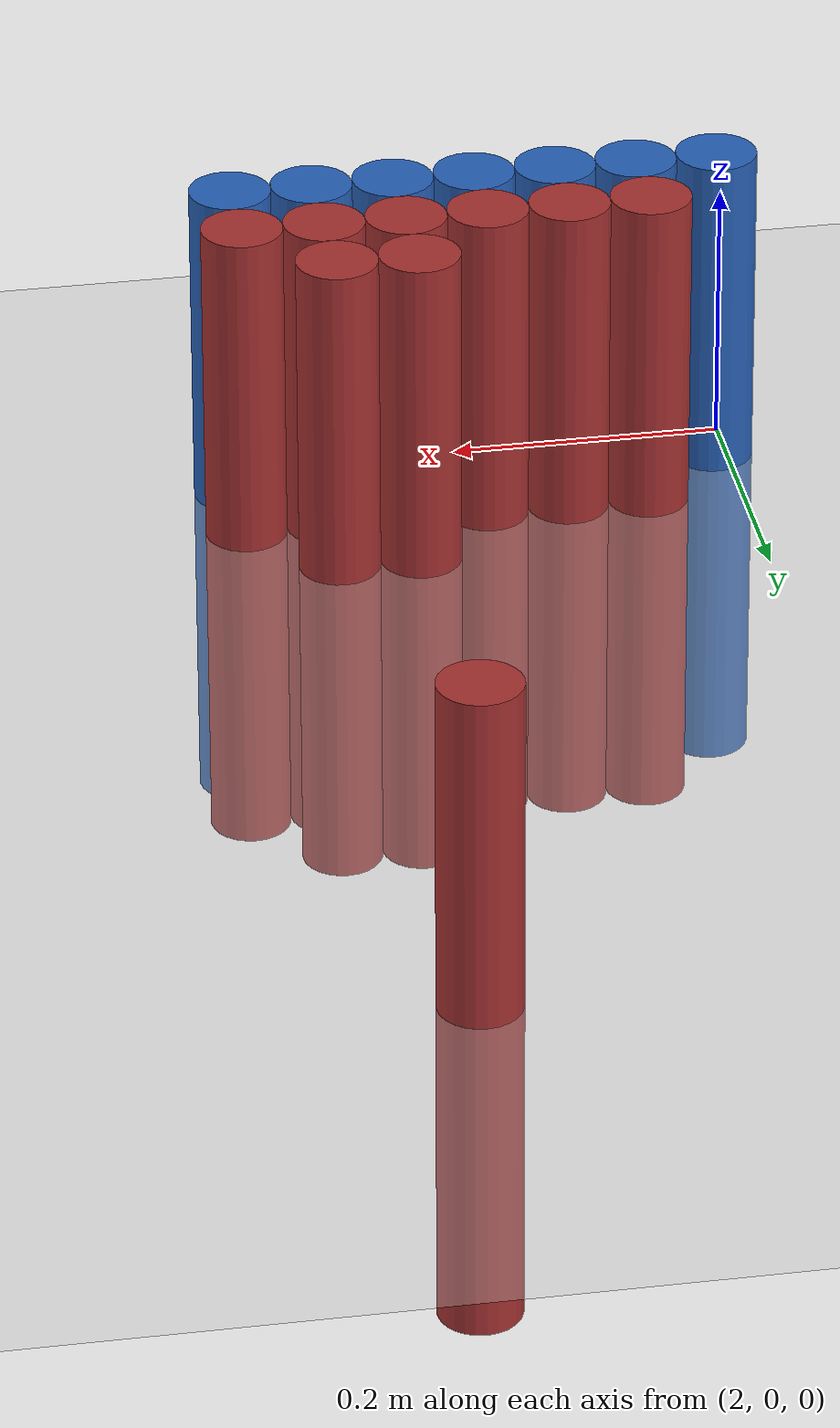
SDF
<sdf version="1.6">
 <world name="default">
  <model name="ground_plane">
   <static>1</static>
   <link name="link">
    <collision name="collision">
     <geometry><plane><normal>0 0 1</normal><size>100 100</size></plane></geometry>
     <surface><friction><ode><mu>100</mu><mu2>50</mu2></ode></friction></surface>
    </collision>
    <visual name="visual">
     <cast_shadows>0</cast_shadows>
     <geometry><plane><normal>0 0 1</normal><size>100 100</size></plane></geometry>
     <material>
      <script><uri>file://media/materials/scripts/gazebo.material</uri><name>Gazebo/Grey</name></script>
     </material>
    </visual>
   </link>
  </model>
  <model name="unit_cylinder_93">
   <static>1</static>
   <pose>2.010000 0.030000 0.000000 0.000000 0.000000 0.000000</pose>
   <link name="link">
    <inertial>
     <mass>1</mass>
     <inertia><ixx>0.145833</ixx><ixy>0</ixy><ixz>0</ixz><iyy>0.145833</iyy><iyz>0</iyz><izz>0.125</izz></inertia>
    </inertial>
    <collision name="collision">
     <geometry><cylinder><radius>0.030000</radius><length>0.5</length></cylinder></geometry>
    </collision>
    <visual name="visual">
     <geometry><cylinder><radius>0.030000</radius><length>0.5</length></cylinder></geometry>
     <material>
      <ambient>0.152000 0.379000 0.720000 1</ambient>
      <diffuse>0.152000 0.379000 0.720000 1</diffuse>
     </material>
     <material>
      <script><name>Gazebo/Grey</name><uri>file://media/materials/scripts/gazebo.material</uri></script>
     </material>
    </visual>
   </link>
  </model>
  <model name="unit_cylinder_184">
   <static>1</static>
   <pose>2.310000 0.750000 0.000000 0.000000 0.000000 0.000000</pose>
   <link name="link">
    <inertial>
     <mass>1</mass>
     <inertia><ixx>0.145833</ixx><ixy>0</ixy><ixz>0</ixz><iyy>0.145833</iyy><iyz>0</iyz><izz>0.125</izz></inertia>
    </inertial>
    <collision name="collision">
     <geometry><cylinder><radius>0.030000</radius><length>0.5</length></cylinder></geometry>
    </collision>
    <visual name="visual">
     <geometry><cylinder><radius>0.030000</radius><length>0.5</length></cylinder></geometry>
     <material>
      <ambient>0.648000 0.192000 0.192000 1</ambient>
      <diffuse>0.648000 0.192000 0.192000 1</diffuse>
     </material>
     <material>
      <script><name>Gazebo/Grey</name><uri>file://media/materials/scripts/gazebo.material</uri></script>
     </material>
    </visual>
   </link>
  </model>
  <model name="unit_cylinder_199">
   <static>1</static>
   <pose>2.250000 0.150000 0.000000 0.000000 0.000000 0.000000</pose>
   <link name="link">
    <inertial>
     <mass>1</mass>
     <inertia><ixx>0.145833</ixx><ixy>0</ixy><ixz>0</ixz><iyy>0.145833</iyy><iyz>0</iyz><izz>0.125</izz></inertia>
    </inertial>
    <collision name="collision">
     <geometry><cylinder><radius>0.030000</radius><length>0.5</length></cylinder></geometry>
    </collision>
    <visual name="visual">
     <geometry><cylinder><radius>0.030000</radius><length>0.5</length></cylinder></geometry>
     <material>
      <ambient>0.648000 0.192000 0.192000 1</ambient>
      <diffuse>0.648000 0.192000 0.192000 1</diffuse>
     </material>
     <material>
      <script><name>Gazebo/Grey</name><uri>file://media/materials/scripts/gazebo.material</uri></script>
     </material>
    </visual>
   </link>
  </model>
  <model name="unit_cylinder_200">
   <static>1</static>
   <pose>2.310000 0.150000 0.000000 0.000000 0.000000 0.000000</pose>
   <link name="link">
    <inertial>
     <mass>1</mass>
     <inertia><ixx>0.145833</ixx><ixy>0</ixy><ixz>0</ixz><iyy>0.145833</iyy><iyz>0</iyz><izz>0.125</izz></inertia>
    </inertial>
    <collision name="collision">
     <geometry><cylinder><radius>0.030000</radius><length>0.5</length></cylinder></geometry>
    </collision>
    <visual name="visual">
     <geometry><cylinder><radius>0.030000</radius><length>0.5</length></cylinder></geometry>
     <material>
      <ambient>0.648000 0.192000 0.192000 1</ambient>
      <diffuse>0.648000 0.192000 0.192000 1</diffuse>
     </material>
     <material>
      <script><name>Gazebo/Grey</name><uri>file://media/materials/scripts/gazebo.material</uri></script>
     </material>
    </visual>
   </link>
  </model>
  <model name="unit_cylinder_205">
   <static>1</static>
   <pose>2.070000 0.090000 0.000000 0.000000 0.000000 0.000000</pose>
   <link name="link">
    <inertial>
     <mass>1</mass>
     <inertia><ixx>0.145833</ixx><ixy>0</ixy><ixz>0</ixz><iyy>0.145833</iyy><iyz>0</iyz><izz>0.125</izz></inertia>
    </inertial>
    <collision name="collision">
     <geometry><cylinder><radius>0.030000</radius><length>0.5</length></cylinder></geometry>
    </collision>
    <visual name="visual">
     <geometry><cylinder><radius>0.030000</radius><length>0.5</length></cylinder></geometry>
     <material>
      <ambient>0.648000 0.192000 0.192000 1</ambient>
      <diffuse>0.648000 0.192000 0.192000 1</diffuse>
     </material>
     <material>
      <script><name>Gazebo/Grey</name><uri>file://media/materials/scripts/gazebo.material</uri></script>
     </material>
    </visual>
   </link>
  </model>
  <model name="unit_cylinder_206">
   <static>1</static>
   <pose>2.130000 0.090000 0.000000 0.000000 0.000000 0.000000</pose>
   <link name="link">
    <inertial>
     <mass>1</mass>
     <inertia><ixx>0.145833</ixx><ixy>0</ixy><ixz>0</ixz><iyy>0.145833</iyy><iyz>0</iyz><izz>0.125</izz></inertia>
    </inertial>
    <collision name="collision">
     <geometry><cylinder><radius>0.030000</radius><length>0.5</length></cylinder></geometry>
    </collision>
    <visual name="visual">
     <geometry><cylinder><radius>0.030000</radius><length>0.5</length></cylinder></geometry>
     <material>
      <ambient>0.648000 0.192000 0.192000 1</ambient>
      <diffuse>0.648000 0.192000 0.192000 1</diffuse>
     </material>
     <material>
      <script><name>Gazebo/Grey</name><uri>file://media/materials/scripts/gazebo.material</uri></script>
     </material>
    </visual>
   </link>
  </model>
  <model name="unit_cylinder_207">
   <static>1</static>
   <pose>2.190000 0.090000 0.000000 0.000000 0.000000 0.000000</pose>
   <link name="link">
    <inertial>
     <mass>1</mass>
     <inertia><ixx>0.145833</ixx><ixy>0</ixy><ixz>0</ixz><iyy>0.145833</iyy><iyz>0</iyz><izz>0.125</izz></inertia>
    </inertial>
    <collision name="collision">
     <geometry><cylinder><radius>0.030000</radius><length>0.5</length></cylinder></geometry>
    </collision>
    <visual name="visual">
     <geometry><cylinder><radius>0.030000</radius><length>0.5</length></cylinder></geometry>
     <material>
      <ambient>0.648000 0.192000 0.192000 1</ambient>
      <diffuse>0.648000 0.192000 0.192000 1</diffuse>
     </material>
     <material>
      <script><name>Gazebo/Grey</name><uri>file://media/materials/scripts/gazebo.material</uri></script>
     </material>
    </visual>
   </link>
  </model>
  <model name="unit_cylinder_208">
   <static>1</static>
   <pose>2.250000 0.090000 0.000000 0.000000 0.000000 0.000000</pose>
   <link name="link">
    <inertial>
     <mass>1</mass>
     <inertia><ixx>0.145833</ixx><ixy>0</ixy><ixz>0</ixz><iyy>0.145833</iyy><iyz>0</iyz><izz>0.125</izz></inertia>
    </inertial>
    <collision name="collision">
     <geometry><cylinder><radius>0.030000</radius><length>0.5</length></cylinder></geometry>
    </collision>
    <visual name="visual">
     <geometry><cylinder><radius>0.030000</radius><length>0.5</length></cylinder></geometry>
     <material>
      <ambient>0.648000 0.192000 0.192000 1</ambient>
      <diffuse>0.648000 0.192000 0.192000 1</diffuse>
     </material>
     <material>
      <script><name>Gazebo/Grey</name><uri>file://media/materials/scripts/gazebo.material</uri></script>
     </material>
    </visual>
   </link>
  </model>
  <model name="unit_cylinder_209">
   <static>1</static>
   <pose>2.310000 0.090000 0.000000 0.000000 0.000000 0.000000</pose>
   <link name="link">
    <inertial>
     <mass>1</mass>
     <inertia><ixx>0.145833</ixx><ixy>0</ixy><ixz>0</ixz><iyy>0.145833</iyy><iyz>0</iyz><izz>0.125</izz></inertia>
    </inertial>
    <collision name="collision">
     <geometry><cylinder><radius>0.030000</radius><length>0.5</length></cylinder></geometry>
    </collision>
    <visual name="visual">
     <geometry><cylinder><radius>0.030000</radius><length>0.5</length></cylinder></geometry>
     <material>
      <ambient>0.648000 0.192000 0.192000 1</ambient>
      <diffuse>0.648000 0.192000 0.192000 1</diffuse>
     </material>
     <material>
      <script><name>Gazebo/Grey</name><uri>file://media/materials/scripts/gazebo.material</uri></script>
     </material>
    </visual>
   </link>
  </model>
  <model name="unit_cylinder_210">
   <static>1</static>
   <pose>2.370000 0.090000 0.000000 0.000000 0.000000 0.000000</pose>
   <link name="link">
    <inertial>
     <mass>1</mass>
     <inertia><ixx>0.145833</ixx><ixy>0</ixy><ixz>0</ixz><iyy>0.145833</iyy><iyz>0</iyz><izz>0.125</izz></inertia>
    </inertial>
    <collision name="collision">
     <geometry><cylinder><radius>0.030000</radius><length>0.5</length></cylinder></geometry>
    </collision>
    <visual name="visual">
     <geometry><cylinder><radius>0.030000</radius><length>0.5</length></cylinder></geometry>
     <material>
      <ambient>0.648000 0.192000 0.192000 1</ambient>
      <diffuse>0.648000 0.192000 0.192000 1</diffuse>
     </material>
     <material>
      <script><name>Gazebo/Grey</name><uri>file://media/materials/scripts/gazebo.material</uri></script>
     </material>
    </visual>
   </link>
  </model>
  <model name="unit_cylinder_220">
   <static>1</static>
   <pose>2.070000 0.030000 0.000000 0.000000 0.000000 0.000000</pose>
   <link name="link">
    <inertial>
     <mass>1</mass>
     <inertia><ixx>0.145833</ixx><ixy>0</ixy><ixz>0</ixz><iyy>0.145833</iyy><iyz>0</iyz><izz>0.125</izz></inertia>
    </inertial>
    <collision name="collision">
     <geometry><cylinder><radius>0.030000</radius><length>0.5</length></cylinder></geometry>
    </collision>
    <visual name="visual">
     <geometry><cylinder><radius>0.030000</radius><length>0.5</length></cylinder></geometry>
     <material>
      <ambient>0.152000 0.379000 0.720000 1</ambient>
      <diffuse>0.152000 0.379000 0.720000 1</diffuse>
     </material>
     <material>
      <script><name>Gazebo/Grey</name><uri>file://media/materials/scripts/gazebo.material</uri></script>
     </material>
    </visual>
   </link>
  </model>
  <model name="unit_cylinder_221">
   <static>1</static>
   <pose>2.130000 0.030000 0.000000 0.000000 0.000000 0.000000</pose>
   <link name="link">
    <inertial>
     <mass>1</mass>
     <inertia><ixx>0.145833</ixx><ixy>0</ixy><ixz>0</ixz><iyy>0.145833</iyy><iyz>0</iyz><izz>0.125</izz></inertia>
    </inertial>
    <collision name="collision">
     <geometry><cylinder><radius>0.030000</radius><length>0.5</length></cylinder></geometry>
    </collision>
    <visual name="visual">
     <geometry><cylinder><radius>0.030000</radius><length>0.5</length></cylinder></geometry>
     <material>
      <ambient>0.152000 0.379000 0.720000 1</ambient>
      <diffuse>0.152000 0.379000 0.720000 1</diffuse>
     </material>
     <material>
      <script><name>Gazebo/Grey</name><uri>file://media/materials/scripts/gazebo.material</uri></script>
     </material>
    </visual>
   </link>
  </model>
  <model name="unit_cylinder_222">
   <static>1</static>
   <pose>2.190000 0.030000 0.000000 0.000000 0.000000 0.000000</pose>
   <link name="link">
    <inertial>
     <mass>1</mass>
     <inertia><ixx>0.145833</ixx><ixy>0</ixy><ixz>0</ixz><iyy>0.145833</iyy><iyz>0</iyz><izz>0.125</izz></inertia>
    </inertial>
    <collision name="collision">
     <geometry><cylinder><radius>0.030000</radius><length>0.5</length></cylinder></geometry>
    </collision>
    <visual name="visual">
     <geometry><cylinder><radius>0.030000</radius><length>0.5</length></cylinder></geometry>
     <material>
      <ambient>0.152000 0.379000 0.720000 1</ambient>
      <diffuse>0.152000 0.379000 0.720000 1</diffuse>
     </material>
     <material>
      <script><name>Gazebo/Grey</name><uri>file://media/materials/scripts/gazebo.material</uri></script>
     </material>
    </visual>
   </link>
  </model>
  <model name="unit_cylinder_223">
   <static>1</static>
   <pose>2.250000 0.030000 0.000000 0.000000 0.000000 0.000000</pose>
   <link name="link">
    <inertial>
     <mass>1</mass>
     <inertia><ixx>0.145833</ixx><ixy>0</ixy><ixz>0</ixz><iyy>0.145833</iyy><iyz>0</iyz><izz>0.125</izz></inertia>
    </inertial>
    <collision name="collision">
     <geometry><cylinder><radius>0.030000</radius><length>0.5</length></cylinder></geometry>
    </collision>
    <visual name="visual">
     <geometry><cylinder><radius>0.030000</radius><length>0.5</length></cylinder></geometry>
     <material>
      <ambient>0.152000 0.379000 0.720000 1</ambient>
      <diffuse>0.152000 0.379000 0.720000 1</diffuse>
     </material>
     <material>
      <script><name>Gazebo/Grey</name><uri>file://media/materials/scripts/gazebo.material</uri></script>
     </material>
    </visual>
   </link>
  </model>
  <model name="unit_cylinder_224">
   <static>1</static>
   <pose>2.310000 0.030000 0.000000 0.000000 0.000000 0.000000</pose>
   <link name="link">
    <inertial>
     <mass>1</mass>
     <inertia><ixx>0.145833</ixx><ixy>0</ixy><ixz>0</ixz><iyy>0.145833</iyy><iyz>0</iyz><izz>0.125</izz></inertia>
    </inertial>
    <collision name="collision">
     <geometry><cylinder><radius>0.030000</radius><length>0.5</length></cylinder></geometry>
    </collision>
    <visual name="visual">
     <geometry><cylinder><radius>0.030000</radius><length>0.5</length></cylinder></geometry>
     <material>
      <ambient>0.152000 0.379000 0.720000 1</ambient>
      <diffuse>0.152000 0.379000 0.720000 1</diffuse>
     </material>
     <material>
      <script><name>Gazebo/Grey</name><uri>file://media/materials/scripts/gazebo.material</uri></script>
     </material>
    </visual>
   </link>
  </model>
  <model name="unit_cylinder_225">
   <static>1</static>
   <pose>2.370000 0.030000 0.000000 0.000000 0.000000 0.000000</pose>
   <link name="link">
    <inertial>
     <mass>1</mass>
     <inertia><ixx>0.145833</ixx><ixy>0</ixy><ixz>0</ixz><iyy>0.145833</iyy><iyz>0</iyz><izz>0.125</izz></inertia>
    </inertial>
    <collision name="collision">
     <geometry><cylinder><radius>0.030000</radius><length>0.5</length></cylinder></geometry>
    </collision>
    <visual name="visual">
     <geometry><cylinder><radius>0.030000</radius><length>0.5</length></cylinder></geometry>
     <material>
      <ambient>0.152000 0.379000 0.720000 1</ambient>
      <diffuse>0.152000 0.379000 0.720000 1</diffuse>
     </material>
     <material>
      <script><name>Gazebo/Grey</name><uri>file://media/materials/scripts/gazebo.material</uri></script>
     </material>
    </visual>
   </link>
  </model>
 </world>
</sdf>
